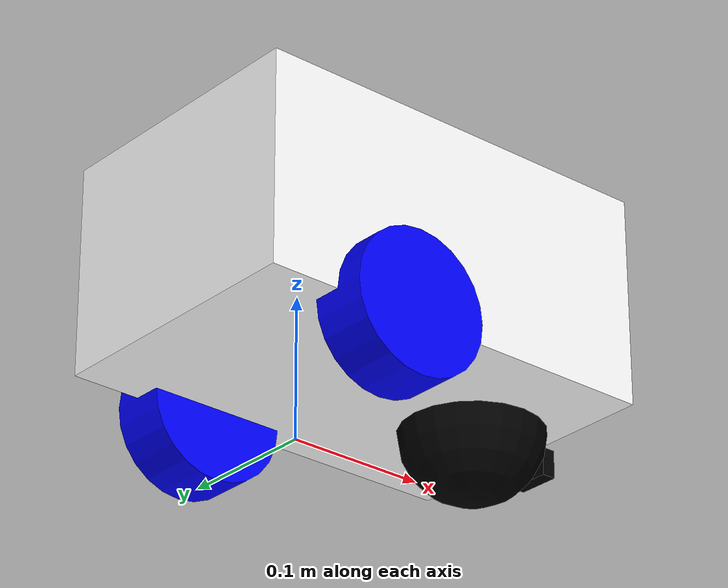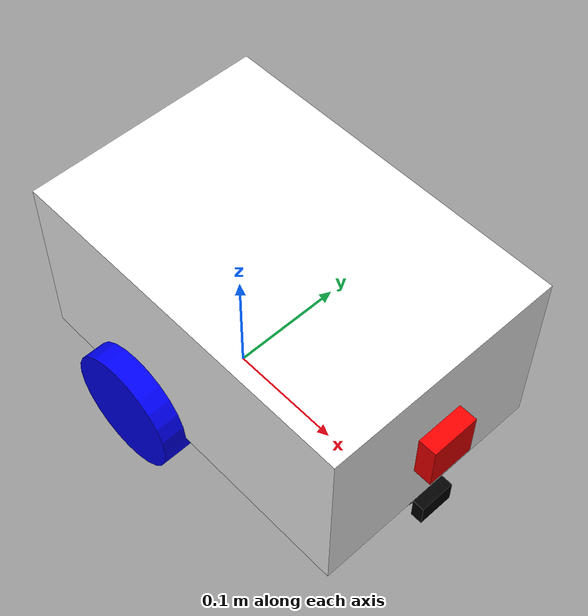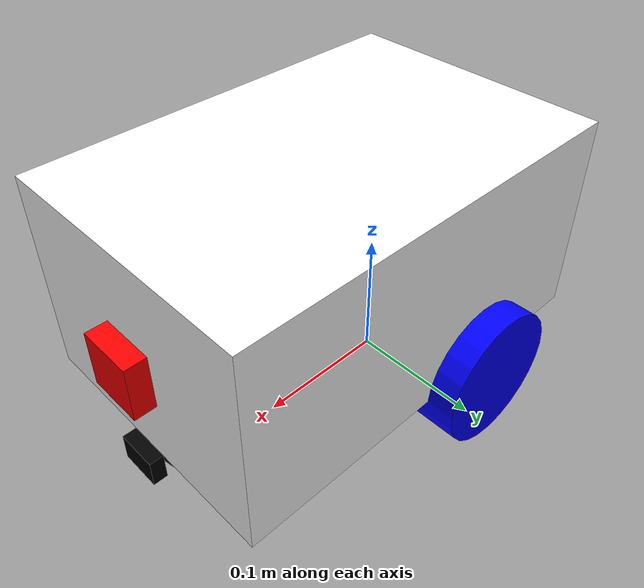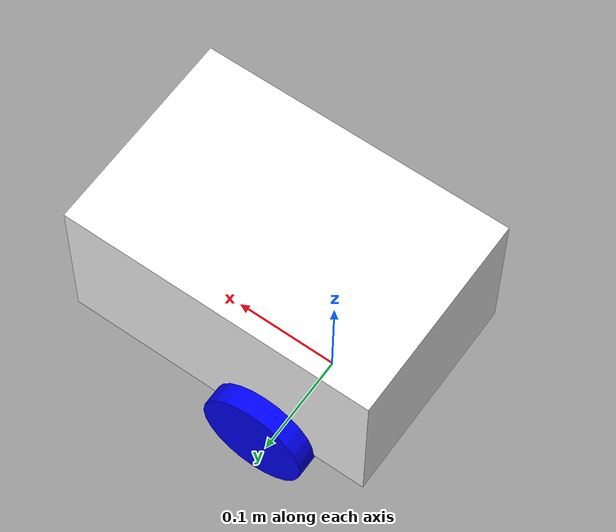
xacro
<?xml version="1.0"?>
<robot xmlns:xacro="http://www.ros.org/wiki/xacro" name="robot_car">

    <link name="base_link"></link>

    <xacro:include filename="description/chassis.xacro" />
    <xacro:include filename="description/wheels.xacro" />
    <xacro:include filename="description/sensors.xacro" />

</robot>

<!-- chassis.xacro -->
<robot xmlns:xacro="http://www.ros.org/wiki/xacro">

    <joint name="chassis_joint" type="fixed">
        <parent link="base_link"/>
        <child link="chassis"/>
        <origin xyz="-0.1 0 0"/>
    </joint>

    <link name="chassis">
        <visual>
            <origin xyz="0.15 0 0.125"/>
            <geometry><box size="0.3 0.2 0.15"/></geometry>
            <material name="white"><color rgba="1 1 1 1"/></material>
        </visual>
        <collision>
            <origin xyz="0.15 0 0.125"/>
            <geometry><box size="0.3 0.2 0.15"/></geometry>
        </collision>
        <inertial>
            <origin xyz="0.15 0 0.125"/>
            <mass value="1.0"/>
            <inertia ixx="0.0052" ixy="0.0" ixz="0.0" iyy="0.0093" iyz="0.0" izz="0.0108"/>
        </inertial>
    </link>

    <joint name="caster_wheel_joint" type="fixed">
        <parent link="chassis"/>
        <child link="caster_wheel"/>
        <origin xyz="0.25 0 0.05"/>
    </joint>

    <link name="caster_wheel">
        <visual>
            <geometry><sphere radius="0.05"/></geometry>
            <material name="black"><color rgba="0 0 0 1"/></material>
        </visual>
        <collision>
            <geometry><sphere radius="0.05"/></geometry>
        </collision>
        <inertial>
            <mass value="0.05"/>
            <inertia ixx="0.00005" ixy="0.0" ixz="0.0" iyy="0.00005" iyz="0.0" izz="0.00005"/>
        </inertial>
    </link>

</robot>

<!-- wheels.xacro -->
<robot xmlns:xacro="http://www.ros.org/wiki/xacro">

    <joint name="left_wheel_joint" type="continuous">
        <parent link="base_link"/>
        <child link="left_wheel"/>
        <origin xyz="0 0.1 0.05" rpy="-${pi/2} 0 0"/>
        <axis xyz="0 0 1"/>
    </joint>

    <link name="left_wheel">
        <visual>
            <geometry><cylinder radius="0.05" length="0.04"/></geometry>
            <material name="blue"><color rgba="0 0 1 1"/></material>
        </visual>
        <collision>
            <geometry><cylinder radius="0.05" length="0.04"/></geometry>
        </collision>
        <inertial>
            <mass value="0.1"/>
            <inertia ixx="0.00007" ixy="0.0" ixz="0.0" iyy="0.00007" iyz="0.0" izz="0.00012"/>
        </inertial>
    </link>

    <joint name="right_wheel_joint" type="continuous">
        <parent link="base_link"/>
        <child link="right_wheel"/>
        <origin xyz="0 -0.1 0.05" rpy="${pi/2} 0 0"/>
        <axis xyz="0 0 -1"/>
    </joint>

    <link name="right_wheel">
        <visual>
            <geometry><cylinder radius="0.05" length="0.04"/></geometry>
            <material name="blue"><color rgba="0 0 1 1"/></material>
        </visual>
        <collision>
            <geometry><cylinder radius="0.05" length="0.04"/></geometry>
        </collision>
        <inertial>
            <mass value="0.1"/>
            <inertia ixx="0.00007" ixy="0.0" ixz="0.0" iyy="0.00007" iyz="0.0" izz="0.00012"/>
        </inertial>
    </link>

    <gazebo>
        <plugin filename="gz-sim-diff-drive-system" name="gz::sim::systems::DiffDrive">
            <left_joint>left_wheel_joint</left_joint>
            <right_joint>right_wheel_joint</right_joint>
            <wheel_separation>0.35</wheel_separation>
            <wheel_radius>0.05</wheel_radius>
            <max_linear_acceleration>1.0</max_linear_acceleration>
            <topic>cmd_vel</topic>
            <odom_topic>odom</odom_topic>
            <frame_id>odom</frame_id>
            <child_frame_id>base_link</child_frame_id>
        </plugin>
    </gazebo>

</robot>

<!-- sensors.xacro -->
<robot xmlns:xacro="http://www.ros.org/wiki/xacro">

    <joint name="esp32_cam_joint" type="fixed">
        <parent link="chassis"/>
        <child link="esp32_cam_link"/>
        <origin xyz="0.305 0 0.12" rpy="0 0 0"/>
    </joint>

    <link name="esp32_cam_link">
        <visual>
            <geometry><box size="0.02 0.04 0.04"/></geometry>
            <material name="red"><color rgba="1 0 0 1"/></material>
        </visual>
    </link>

    <joint name="front_ultrasonic_joint" type="fixed">
        <parent link="chassis"/>
        <child link="front_ultrasonic_link"/>
        <origin xyz="0.305 0 0.04" rpy="0 0 0"/>
    </joint>

    <link name="front_ultrasonic_link">
        <visual>
            <geometry><box size="0.01 0.03 0.02"/></geometry>
            <material name="black"><color rgba="0 0 0 1"/></material>
        </visual>
    </link>

    <gazebo reference="chassis">
        <plugin name="my_robot_imu" filename="libgazebo_ros_imu_sensor.so">
            <ros>
                <argument>~/out:=imu</argument>
            </ros>
            <update_rate>30</update_rate>
        </plugin>
    </gazebo>

</robot>
